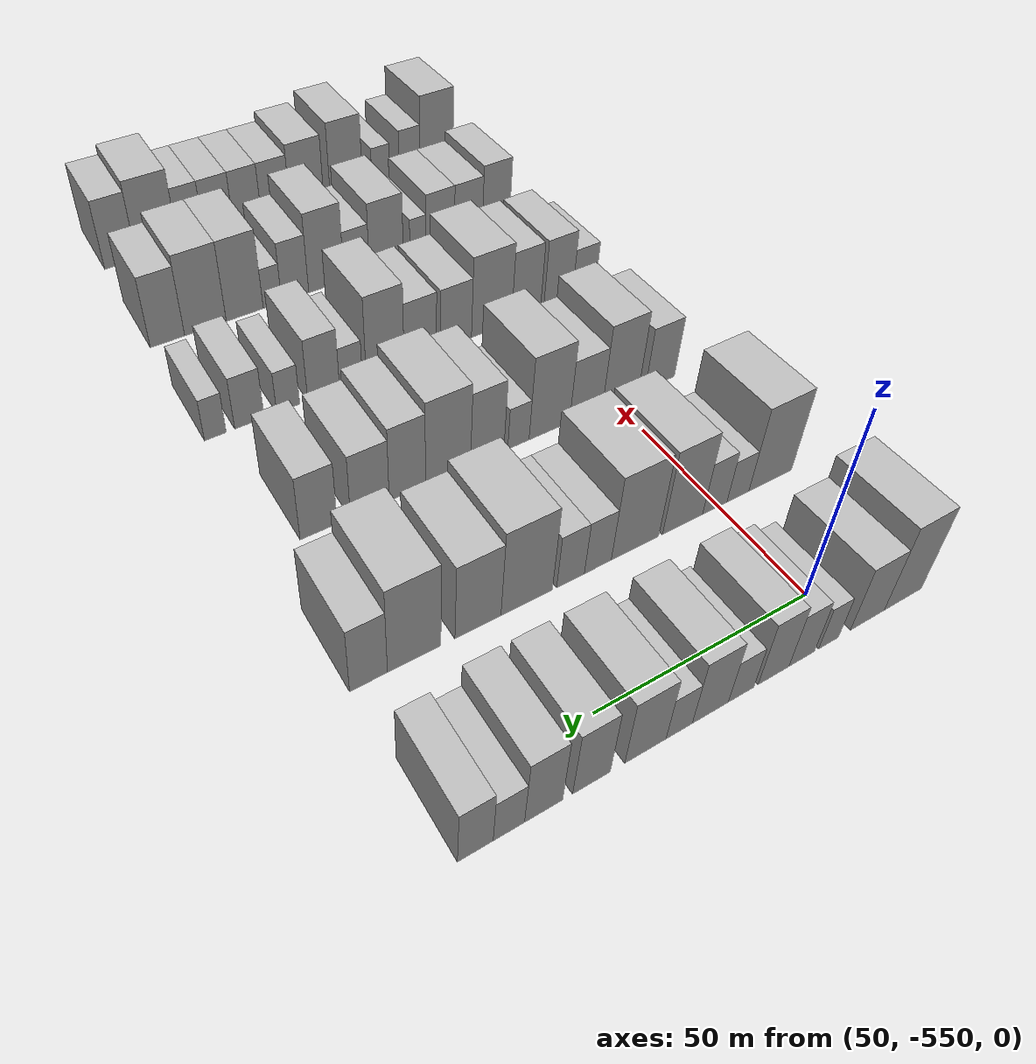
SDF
<sdf version="1.6">
 <world name="default">
  <model name="building_1">
   <static>1</static>
   <pose>50.0000 -565.0353 0 0.000000 0.000000 0.000000</pose>
   <link name="link">
    <pose>0 0 12.00 0 0 0</pose>
    <collision name="collision"><geometry><box><size>20.0000 9.9295 24.0000</size></box></geometry></collision>
    <visual name="visual">
     <cast_shadows>0</cast_shadows>
     <geometry><box><size>20.0000 9.9295 24.0000</size></box></geometry>
     <material>
      <script>
       <uri>model://HANNAS_wall/materials/scripts</uri>
       <uri>model://HANNAS_wall/materials/textures</uri>
       <name>vrc/HANNAS_wall</name>
      </script>
     </material>
    </visual>
   </link>
  </model>
  <model name="building_2">
   <static>1</static>
   <pose>50.0000 -555.6900 0 0.000000 0.000000 0.000000</pose>
   <link name="link">
    <pose>0 0 9.00 0 0 0</pose>
    <collision name="collision"><geometry><box><size>20.0000 8.7611 18.0000</size></box></geometry></collision>
    <visual name="visual">
     <cast_shadows>0</cast_shadows>
     <geometry><box><size>20.0000 8.7611 18.0000</size></box></geometry>
     <material>
      <script>
       <uri>model://HANNAS_wall/materials/scripts</uri>
       <uri>model://HANNAS_wall/materials/textures</uri>
       <name>vrc/HANNAS_wall</name>
      </script>
     </material>
    </visual>
   </link>
  </model>
  <model name="building_3">
   <static>1</static>
   <pose>50.0000 -545.8065 0 0.000000 0.000000 0.000000</pose>
   <link name="link">
    <pose>0 0 6.00 0 0 0</pose>
    <collision name="collision"><geometry><box><size>20.0000 5.0057 12.0000</size></box></geometry></collision>
    <visual name="visual">
     <cast_shadows>0</cast_shadows>
     <geometry><box><size>20.0000 5.0057 12.0000</size></box></geometry>
     <material>
      <script>
       <uri>model://HANNAS_wall/materials/scripts</uri>
       <uri>model://HANNAS_wall/materials/textures</uri>
       <name>vrc/HANNAS_wall</name>
      </script>
     </material>
    </visual>
   </link>
  </model>
  <model name="building_4">
   <static>1</static>
   <pose>50.0000 -539.1809 0 0.000000 0.000000 0.000000</pose>
   <link name="link">
    <pose>0 0 7.50 0 0 0</pose>
    <collision name="collision"><geometry><box><size>20.0000 6.2455 15.0000</size></box></geometry></collision>
    <visual name="visual">
     <cast_shadows>0</cast_shadows>
     <geometry><box><size>20.0000 6.2455 15.0000</size></box></geometry>
     <material>
      <script>
       <uri>model://HANNAS_wall/materials/scripts</uri>
       <uri>model://HANNAS_wall/materials/textures</uri>
       <name>vrc/HANNAS_wall</name>
      </script>
     </material>
    </visual>
   </link>
  </model>
  <model name="building_5">
   <static>1</static>
   <pose>50.0000 -532.3850 0 0.000000 0.000000 0.000000</pose>
   <link name="link">
    <pose>0 0 9.00 0 0 0</pose>
    <collision name="collision"><geometry><box><size>20.0000 7.3461 18.0000</size></box></geometry></collision>
    <visual name="visual">
     <cast_shadows>0</cast_shadows>
     <geometry><box><size>20.0000 7.3461 18.0000</size></box></geometry>
     <material>
      <script>
       <uri>model://HANNAS_wall/materials/scripts</uri>
       <uri>model://HANNAS_wall/materials/textures</uri>
       <name>vrc/HANNAS_wall</name>
      </script>
     </material>
    </visual>
   </link>
  </model>
  <model name="building_6">
   <static>1</static>
   <pose>50.0000 -524.7717 0 0.000000 0.000000 0.000000</pose>
   <link name="link">
    <pose>0 0 6.00 0 0 0</pose>
    <collision name="collision"><geometry><box><size>20.0000 5.8805 12.0000</size></box></geometry></collision>
    <visual name="visual">
     <cast_shadows>0</cast_shadows>
     <geometry><box><size>20.0000 5.8805 12.0000</size></box></geometry>
     <material>
      <script>
       <uri>model://HANNAS_wall/materials/scripts</uri>
       <uri>model://HANNAS_wall/materials/textures</uri>
       <name>vrc/HANNAS_wall</name>
      </script>
     </material>
    </visual>
   </link>
  </model>
  <model name="building_7">
   <static>1</static>
   <pose>50.0000 -517.7646 0 0.000000 0.000000 0.000000</pose>
   <link name="link">
    <pose>0 0 9.00 0 0 0</pose>
    <collision name="collision"><geometry><box><size>20.0000 8.1337 18.0000</size></box></geometry></collision>
    <visual name="visual">
     <cast_shadows>0</cast_shadows>
     <geometry><box><size>20.0000 8.1337 18.0000</size></box></geometry>
     <material>
      <script>
       <uri>model://HANNAS_wall/materials/scripts</uri>
       <uri>model://HANNAS_wall/materials/textures</uri>
       <name>vrc/HANNAS_wall</name>
      </script>
     </material>
    </visual>
   </link>
  </model>
  <model name="building_8">
   <static>1</static>
   <pose>50.0000 -510.8210 0 0.000000 0.000000 0.000000</pose>
   <link name="link">
    <pose>0 0 6.00 0 0 0</pose>
    <collision name="collision"><geometry><box><size>20.0000 5.7534 12.0000</size></box></geometry></collision>
    <visual name="visual">
     <cast_shadows>0</cast_shadows>
     <geometry><box><size>20.0000 5.7534 12.0000</size></box></geometry>
     <material>
      <script>
       <uri>model://HANNAS_wall/materials/scripts</uri>
       <uri>model://HANNAS_wall/materials/textures</uri>
       <name>vrc/HANNAS_wall</name>
      </script>
     </material>
    </visual>
   </link>
  </model>
  <model name="building_9">
   <static>1</static>
   <pose>50.0000 -503.5562 0 0.000000 0.000000 0.000000</pose>
   <link name="link">
    <pose>0 0 9.00 0 0 0</pose>
    <collision name="collision"><geometry><box><size>20.0000 8.7762 18.0000</size></box></geometry></collision>
    <visual name="visual">
     <cast_shadows>0</cast_shadows>
     <geometry><box><size>20.0000 8.7762 18.0000</size></box></geometry>
     <material>
      <script>
       <uri>model://HANNAS_wall/materials/scripts</uri>
       <uri>model://HANNAS_wall/materials/textures</uri>
       <name>vrc/HANNAS_wall</name>
      </script>
     </material>
    </visual>
   </link>
  </model>
  <model name="building_10">
   <static>1</static>
   <pose>50.0000 -492.3334 0 0.000000 0.000000 0.000000</pose>
   <link name="link">
    <pose>0 0 9.00 0 0 0</pose>
    <collision name="collision"><geometry><box><size>20.0000 7.6694 18.0000</size></box></geometry></collision>
    <visual name="visual">
     <cast_shadows>0</cast_shadows>
     <geometry><box><size>20.0000 7.6694 18.0000</size></box></geometry>
     <material>
      <script>
       <uri>model://HANNAS_wall/materials/scripts</uri>
       <uri>model://HANNAS_wall/materials/textures</uri>
       <name>vrc/HANNAS_wall</name>
      </script>
     </material>
    </visual>
   </link>
  </model>
  <model name="building_11">
   <static>1</static>
   <pose>50.0000 -482.7700 0 0.000000 0.000000 0.000000</pose>
   <link name="link">
    <pose>0 0 9.00 0 0 0</pose>
    <collision name="collision"><geometry><box><size>20.0000 7.4574 18.0000</size></box></geometry></collision>
    <visual name="visual">
     <cast_shadows>0</cast_shadows>
     <geometry><box><size>20.0000 7.4574 18.0000</size></box></geometry>
     <material>
      <script>
       <uri>model://HANNAS_wall/materials/scripts</uri>
       <uri>model://HANNAS_wall/materials/textures</uri>
       <name>vrc/HANNAS_wall</name>
      </script>
     </material>
    </visual>
   </link>
  </model>
  <model name="building_12">
   <static>1</static>
   <pose>50.0000 -476.0583 0 0.000000 0.000000 0.000000</pose>
   <link name="link">
    <pose>0 0 6.00 0 0 0</pose>
    <collision name="collision"><geometry><box><size>20.0000 5.9659 12.0000</size></box></geometry></collision>
    <visual name="visual">
     <cast_shadows>0</cast_shadows>
     <geometry><box><size>20.0000 5.9659 12.0000</size></box></geometry>
     <material>
      <script>
       <uri>model://HANNAS_wall/materials/scripts</uri>
       <uri>model://HANNAS_wall/materials/textures</uri>
       <name>vrc/HANNAS_wall</name>
      </script>
     </material>
    </visual>
   </link>
  </model>
  <model name="building_13">
   <static>1</static>
   <pose>50.0000 -469.7635 0 0.000000 0.000000 0.000000</pose>
   <link name="link">
    <pose>0 0 7.50 0 0 0</pose>
    <collision name="collision"><geometry><box><size>20.0000 6.6238 15.0000</size></box></geometry></collision>
    <visual name="visual">
     <cast_shadows>0</cast_shadows>
     <geometry><box><size>20.0000 6.6238 15.0000</size></box></geometry>
     <material>
      <script>
       <uri>model://HANNAS_wall/materials/scripts</uri>
       <uri>model://HANNAS_wall/materials/textures</uri>
       <name>vrc/HANNAS_wall</name>
      </script>
     </material>
    </visual>
   </link>
  </model>
  <model name="building_116">
   <static>1</static>
   <pose>85.0000 -564.0506 0 0.000000 0.000000 0.000000</pose>
   <link name="link">
    <pose>0 0 12.00 0 0 0</pose>
    <collision name="collision"><geometry><box><size>20.0000 11.8989 24.0000</size></box></geometry></collision>
    <visual name="visual">
     <cast_shadows>0</cast_shadows>
     <geometry><box><size>20.0000 11.8989 24.0000</size></box></geometry>
     <material>
      <script>
       <uri>model://HANNAS_wall/materials/scripts</uri>
       <uri>model://HANNAS_wall/materials/textures</uri>
       <name>vrc/HANNAS_wall</name>
      </script>
     </material>
    </visual>
   </link>
  </model>
  <model name="building_117">
   <static>1</static>
   <pose>85.0000 -555.1278 0 0.000000 0.000000 0.000000</pose>
   <link name="link">
    <pose>0 0 6.00 0 0 0</pose>
    <collision name="collision"><geometry><box><size>20.0000 5.9466 12.0000</size></box></geometry></collision>
    <visual name="visual">
     <cast_shadows>0</cast_shadows>
     <geometry><box><size>20.0000 5.9466 12.0000</size></box></geometry>
     <material>
      <script>
       <uri>model://HANNAS_wall/materials/scripts</uri>
       <uri>model://HANNAS_wall/materials/textures</uri>
       <name>vrc/HANNAS_wall</name>
      </script>
     </material>
    </visual>
   </link>
  </model>
  <model name="building_118">
   <static>1</static>
   <pose>85.0000 -548.9232 0 0.000000 0.000000 0.000000</pose>
   <link name="link">
    <pose>0 0 7.50 0 0 0</pose>
    <collision name="collision"><geometry><box><size>20.0000 6.4627 15.0000</size></box></geometry></collision>
    <visual name="visual">
     <cast_shadows>0</cast_shadows>
     <geometry><box><size>20.0000 6.4627 15.0000</size></box></geometry>
     <material>
      <script>
       <uri>model://HANNAS_wall/materials/scripts</uri>
       <uri>model://HANNAS_wall/materials/textures</uri>
       <name>vrc/HANNAS_wall</name>
      </script>
     </material>
    </visual>
   </link>
  </model>
  <model name="building_119">
   <static>1</static>
   <pose>85.0000 -540.5253 0 0.000000 0.000000 0.000000</pose>
   <link name="link">
    <pose>0 0 12.00 0 0 0</pose>
    <collision name="collision"><geometry><box><size>20.0000 10.3332 24.0000</size></box></geometry></collision>
    <visual name="visual">
     <cast_shadows>0</cast_shadows>
     <geometry><box><size>20.0000 10.3332 24.0000</size></box></geometry>
     <material>
      <script>
       <uri>model://HANNAS_wall/materials/scripts</uri>
       <uri>model://HANNAS_wall/materials/textures</uri>
       <name>vrc/HANNAS_wall</name>
      </script>
     </material>
    </visual>
   </link>
  </model>
  <model name="building_120">
   <static>1</static>
   <pose>85.0000 -528.4848 0 0.000000 0.000000 0.000000</pose>
   <link name="link">
    <pose>0 0 12.00 0 0 0</pose>
    <collision name="collision"><geometry><box><size>20.0000 11.7479 24.0000</size></box></geometry></collision>
    <visual name="visual">
     <cast_shadows>0</cast_shadows>
     <geometry><box><size>20.0000 11.7479 24.0000</size></box></geometry>
     <material>
      <script>
       <uri>model://HANNAS_wall/materials/scripts</uri>
       <uri>model://HANNAS_wall/materials/textures</uri>
       <name>vrc/HANNAS_wall</name>
      </script>
     </material>
    </visual>
   </link>
  </model>
  <model name="building_121">
   <static>1</static>
   <pose>85.0000 -519.3772 0 0.000000 0.000000 0.000000</pose>
   <link name="link">
    <pose>0 0 7.50 0 0 0</pose>
    <collision name="collision"><geometry><box><size>20.0000 6.4673 15.0000</size></box></geometry></collision>
    <visual name="visual">
     <cast_shadows>0</cast_shadows>
     <geometry><box><size>20.0000 6.4673 15.0000</size></box></geometry>
     <material>
      <script>
       <uri>model://HANNAS_wall/materials/scripts</uri>
       <uri>model://HANNAS_wall/materials/textures</uri>
       <name>vrc/HANNAS_wall</name>
      </script>
     </material>
    </visual>
   </link>
  </model>
  <model name="building_122">
   <static>1</static>
   <pose>85.0000 -512.8950 0 0.000000 0.000000 0.000000</pose>
   <link name="link">
    <pose>0 0 7.50 0 0 0</pose>
    <collision name="collision"><geometry><box><size>20.0000 6.4971 15.0000</size></box></geometry></collision>
    <visual name="visual">
     <cast_shadows>0</cast_shadows>
     <geometry><box><size>20.0000 6.4971 15.0000</size></box></geometry>
     <material>
      <script>
       <uri>model://HANNAS_wall/materials/scripts</uri>
       <uri>model://HANNAS_wall/materials/textures</uri>
       <name>vrc/HANNAS_wall</name>
      </script>
     </material>
    </visual>
   </link>
  </model>
  <model name="building_123">
   <static>1</static>
   <pose>85.0000 -502.8181 0 0.000000 0.000000 0.000000</pose>
   <link name="link">
    <pose>0 0 12.00 0 0 0</pose>
    <collision name="collision"><geometry><box><size>20.0000 11.6566 24.0000</size></box></geometry></collision>
    <visual name="visual">
     <cast_shadows>0</cast_shadows>
     <geometry><box><size>20.0000 11.6566 24.0000</size></box></geometry>
     <material>
      <script>
       <uri>model://HANNAS_wall/materials/scripts</uri>
       <uri>model://HANNAS_wall/materials/textures</uri>
       <name>vrc/HANNAS_wall</name>
      </script>
     </material>
    </visual>
   </link>
  </model>
  <model name="building_124">
   <static>1</static>
   <pose>85.0000 -491.9688 0 0.000000 0.000000 0.000000</pose>
   <link name="link">
    <pose>0 0 10.50 0 0 0</pose>
    <collision name="collision"><geometry><box><size>20.0000 10.0420 21.0000</size></box></geometry></collision>
    <visual name="visual">
     <cast_shadows>0</cast_shadows>
     <geometry><box><size>20.0000 10.0420 21.0000</size></box></geometry>
     <material>
      <script>
       <uri>model://HANNAS_wall/materials/scripts</uri>
       <uri>model://HANNAS_wall/materials/textures</uri>
       <name>vrc/HANNAS_wall</name>
      </script>
     </material>
    </visual>
   </link>
  </model>
  <model name="building_125">
   <static>1</static>
   <pose>85.0000 -478.4094 0 0.000000 0.000000 0.000000</pose>
   <link name="link">
    <pose>0 0 12.00 0 0 0</pose>
    <collision name="collision"><geometry><box><size>20.0000 11.0767 24.0000</size></box></geometry></collision>
    <visual name="visual">
     <cast_shadows>0</cast_shadows>
     <geometry><box><size>20.0000 11.0767 24.0000</size></box></geometry>
     <material>
      <script>
       <uri>model://HANNAS_wall/materials/scripts</uri>
       <uri>model://HANNAS_wall/materials/textures</uri>
       <name>vrc/HANNAS_wall</name>
      </script>
     </material>
    </visual>
   </link>
  </model>
  <model name="building_126">
   <static>1</static>
   <pose>85.0000 -469.0663 0 0.000000 0.000000 0.000000</pose>
   <link name="link">
    <pose>0 0 9.00 0 0 0</pose>
    <collision name="collision"><geometry><box><size>20.0000 7.6094 18.0000</size></box></geometry></collision>
    <visual name="visual">
     <cast_shadows>0</cast_shadows>
     <geometry><box><size>20.0000 7.6094 18.0000</size></box></geometry>
     <material>
      <script>
       <uri>model://HANNAS_wall/materials/scripts</uri>
       <uri>model://HANNAS_wall/materials/textures</uri>
       <name>vrc/HANNAS_wall</name>
      </script>
     </material>
    </visual>
   </link>
  </model>
  <model name="building_249">
   <static>1</static>
   <pose>120.0000 -562.7514 0 0.000000 0.000000 0.000000</pose>
   <link name="link">
    <pose>0 0 9.00 0 0 0</pose>
    <collision name="collision"><geometry><box><size>20.0000 8.4972 18.0000</size></box></geometry></collision>
    <visual name="visual">
     <cast_shadows>0</cast_shadows>
     <geometry><box><size>20.0000 8.4972 18.0000</size></box></geometry>
     <material>
      <script>
       <uri>model://HANNAS_wall/materials/scripts</uri>
       <uri>model://HANNAS_wall/materials/textures</uri>
       <name>vrc/HANNAS_wall</name>
      </script>
     </material>
    </visual>
   </link>
  </model>
  <model name="building_250">
   <static>1</static>
   <pose>120.0000 -551.4380 0 0.000000 0.000000 0.000000</pose>
   <link name="link">
    <pose>0 0 12.00 0 0 0</pose>
    <collision name="collision"><geometry><box><size>20.0000 10.1295 24.0000</size></box></geometry></collision>
    <visual name="visual">
     <cast_shadows>0</cast_shadows>
     <geometry><box><size>20.0000 10.1295 24.0000</size></box></geometry>
     <material>
      <script>
       <uri>model://HANNAS_wall/materials/scripts</uri>
       <uri>model://HANNAS_wall/materials/textures</uri>
       <name>vrc/HANNAS_wall</name>
      </script>
     </material>
    </visual>
   </link>
  </model>
  <model name="building_251">
   <static>1</static>
   <pose>120.0000 -541.8839 0 0.000000 0.000000 0.000000</pose>
   <link name="link">
    <pose>0 0 9.00 0 0 0</pose>
    <collision name="collision"><geometry><box><size>20.0000 8.9787 18.0000</size></box></geometry></collision>
    <visual name="visual">
     <cast_shadows>0</cast_shadows>
     <geometry><box><size>20.0000 8.9787 18.0000</size></box></geometry>
     <material>
      <script>
       <uri>model://HANNAS_wall/materials/scripts</uri>
       <uri>model://HANNAS_wall/materials/textures</uri>
       <name>vrc/HANNAS_wall</name>
      </script>
     </material>
    </visual>
   </link>
  </model>
  <model name="building_252">
   <static>1</static>
   <pose>120.0000 -532.0388 0 0.000000 0.000000 0.000000</pose>
   <link name="link">
    <pose>0 0 12.00 0 0 0</pose>
    <collision name="collision"><geometry><box><size>20.0000 10.7116 24.0000</size></box></geometry></collision>
    <visual name="visual">
     <cast_shadows>0</cast_shadows>
     <geometry><box><size>20.0000 10.7116 24.0000</size></box></geometry>
     <material>
      <script>
       <uri>model://HANNAS_wall/materials/scripts</uri>
       <uri>model://HANNAS_wall/materials/textures</uri>
       <name>vrc/HANNAS_wall</name>
      </script>
     </material>
    </visual>
   </link>
  </model>
  <model name="building_253">
   <static>1</static>
   <pose>120.0000 -523.9271 0 0.000000 0.000000 0.000000</pose>
   <link name="link">
    <pose>0 0 6.00 0 0 0</pose>
    <collision name="collision"><geometry><box><size>20.0000 5.5116 12.0000</size></box></geometry></collision>
    <visual name="visual">
     <cast_shadows>0</cast_shadows>
     <geometry><box><size>20.0000 5.5116 12.0000</size></box></geometry>
     <material>
      <script>
       <uri>model://HANNAS_wall/materials/scripts</uri>
       <uri>model://HANNAS_wall/materials/textures</uri>
       <name>vrc/HANNAS_wall</name>
      </script>
     </material>
    </visual>
   </link>
  </model>
  <model name="building_254">
   <static>1</static>
   <pose>120.0000 -515.9507 0 0.000000 0.000000 0.000000</pose>
   <link name="link">
    <pose>0 0 10.50 0 0 0</pose>
    <collision name="collision"><geometry><box><size>20.0000 8.4413 21.0000</size></box></geometry></collision>
    <visual name="visual">
     <cast_shadows>0</cast_shadows>
     <geometry><box><size>20.0000 8.4413 21.0000</size></box></geometry>
     <material>
      <script>
       <uri>model://HANNAS_wall/materials/scripts</uri>
       <uri>model://HANNAS_wall/materials/textures</uri>
       <name>vrc/HANNAS_wall</name>
      </script>
     </material>
    </visual>
   </link>
  </model>
  <model name="building_255">
   <static>1</static>
   <pose>120.0000 -506.2251 0 0.000000 0.000000 0.000000</pose>
   <link name="link">
    <pose>0 0 12.00 0 0 0</pose>
    <collision name="collision"><geometry><box><size>20.0000 11.0099 24.0000</size></box></geometry></collision>
    <visual name="visual">
     <cast_shadows>0</cast_shadows>
     <geometry><box><size>20.0000 11.0099 24.0000</size></box></geometry>
     <material>
      <script>
       <uri>model://HANNAS_wall/materials/scripts</uri>
       <uri>model://HANNAS_wall/materials/textures</uri>
       <name>vrc/HANNAS_wall</name>
      </script>
     </material>
    </visual>
   </link>
  </model>
  <model name="building_256">
   <static>1</static>
   <pose>120.0000 -496.4278 0 0.000000 0.000000 0.000000</pose>
   <link name="link">
    <pose>0 0 10.50 0 0 0</pose>
    <collision name="collision"><geometry><box><size>20.0000 8.5849 21.0000</size></box></geometry></collision>
    <visual name="visual">
     <cast_shadows>0</cast_shadows>
     <geometry><box><size>20.0000 8.5849 21.0000</size></box></geometry>
     <material>
      <script>
       <uri>model://HANNAS_wall/materials/scripts</uri>
       <uri>model://HANNAS_wall/materials/textures</uri>
       <name>vrc/HANNAS_wall</name>
      </script>
     </material>
    </visual>
   </link>
  </model>
  <model name="building_257">
   <static>1</static>
   <pose>120.0000 -487.6752 0 0.000000 0.000000 0.000000</pose>
   <link name="link">
    <pose>0 0 9.00 0 0 0</pose>
    <collision name="collision"><geometry><box><size>20.0000 8.9202 18.0000</size></box></geometry></collision>
    <visual name="visual">
     <cast_shadows>0</cast_shadows>
     <geometry><box><size>20.0000 8.9202 18.0000</size></box></geometry>
     <material>
      <script>
       <uri>model://HANNAS_wall/materials/scripts</uri>
       <uri>model://HANNAS_wall/materials/textures</uri>
       <name>vrc/HANNAS_wall</name>
      </script>
     </material>
    </visual>
   </link>
  </model>
  <model name="building_258">
   <static>1</static>
   <pose>120.0000 -476.0980 0 0.000000 0.000000 0.000000</pose>
   <link name="link">
    <pose>0 0 9.00 0 0 0</pose>
    <collision name="collision"><geometry><box><size>20.0000 8.2342 18.0000</size></box></geometry></collision>
    <visual name="visual">
     <cast_shadows>0</cast_shadows>
     <geometry><box><size>20.0000 8.2342 18.0000</size></box></geometry>
     <material>
      <script>
       <uri>model://HANNAS_wall/materials/scripts</uri>
       <uri>model://HANNAS_wall/materials/textures</uri>
       <name>vrc/HANNAS_wall</name>
      </script>
     </material>
    </visual>
   </link>
  </model>
  <model name="building_382">
   <static>1</static>
   <pose>155.0000 -566.4762 0 0.000000 0.000000 0.000000</pose>
   <link name="link">
    <pose>0 0 7.50 0 0 0</pose>
    <collision name="collision"><geometry><box><size>20.0000 7.0477 15.0000</size></box></geometry></collision>
    <visual name="visual">
     <cast_shadows>0</cast_shadows>
     <geometry><box><size>20.0000 7.0477 15.0000</size></box></geometry>
     <material>
      <script>
       <uri>model://HANNAS_wall/materials/scripts</uri>
       <uri>model://HANNAS_wall/materials/textures</uri>
       <name>vrc/HANNAS_wall</name>
      </script>
     </material>
    </visual>
   </link>
  </model>
  <model name="building_383">
   <static>1</static>
   <pose>155.0000 -558.6717 0 0.000000 0.000000 0.000000</pose>
   <link name="link">
    <pose>0 0 10.50 0 0 0</pose>
    <collision name="collision"><geometry><box><size>20.0000 8.5612 21.0000</size></box></geometry></collision>
    <visual name="visual">
     <cast_shadows>0</cast_shadows>
     <geometry><box><size>20.0000 8.5612 21.0000</size></box></geometry>
     <material>
      <script>
       <uri>model://HANNAS_wall/materials/scripts</uri>
       <uri>model://HANNAS_wall/materials/textures</uri>
       <name>vrc/HANNAS_wall</name>
      </script>
     </material>
    </visual>
   </link>
  </model>
  <model name="building_384">
   <static>1</static>
   <pose>155.0000 -549.1633 0 0.000000 0.000000 0.000000</pose>
   <link name="link">
    <pose>0 0 10.50 0 0 0</pose>
    <collision name="collision"><geometry><box><size>20.0000 8.4557 21.0000</size></box></geometry></collision>
    <visual name="visual">
     <cast_shadows>0</cast_shadows>
     <geometry><box><size>20.0000 8.4557 21.0000</size></box></geometry>
     <material>
      <script>
       <uri>model://HANNAS_wall/materials/scripts</uri>
       <uri>model://HANNAS_wall/materials/textures</uri>
       <name>vrc/HANNAS_wall</name>
      </script>
     </material>
    </visual>
   </link>
  </model>
  <model name="building_385">
   <static>1</static>
   <pose>155.0000 -539.2023 0 0.000000 0.000000 0.000000</pose>
   <link name="link">
    <pose>0 0 12.00 0 0 0</pose>
    <collision name="collision"><geometry><box><size>20.0000 11.4663 24.0000</size></box></geometry></collision>
    <visual name="visual">
     <cast_shadows>0</cast_shadows>
     <geometry><box><size>20.0000 11.4663 24.0000</size></box></geometry>
     <material>
      <script>
       <uri>model://HANNAS_wall/materials/scripts</uri>
       <uri>model://HANNAS_wall/materials/textures</uri>
       <name>vrc/HANNAS_wall</name>
      </script>
     </material>
    </visual>
   </link>
  </model>
  <model name="building_386">
   <static>1</static>
   <pose>155.0000 -529.1004 0 0.000000 0.000000 0.000000</pose>
   <link name="link">
    <pose>0 0 9.00 0 0 0</pose>
    <collision name="collision"><geometry><box><size>20.0000 8.7374 18.0000</size></box></geometry></collision>
    <visual name="visual">
     <cast_shadows>0</cast_shadows>
     <geometry><box><size>20.0000 8.7374 18.0000</size></box></geometry>
     <material>
      <script>
       <uri>model://HANNAS_wall/materials/scripts</uri>
       <uri>model://HANNAS_wall/materials/textures</uri>
       <name>vrc/HANNAS_wall</name>
      </script>
     </material>
    </visual>
   </link>
  </model>
  <model name="building_387">
   <static>1</static>
   <pose>155.0000 -519.3577 0 0.000000 0.000000 0.000000</pose>
   <link name="link">
    <pose>0 0 9.00 0 0 0</pose>
    <collision name="collision"><geometry><box><size>20.0000 8.7480 18.0000</size></box></geometry></collision>
    <visual name="visual">
     <cast_shadows>0</cast_shadows>
     <geometry><box><size>20.0000 8.7480 18.0000</size></box></geometry>
     <material>
      <script>
       <uri>model://HANNAS_wall/materials/scripts</uri>
       <uri>model://HANNAS_wall/materials/textures</uri>
       <name>vrc/HANNAS_wall</name>
      </script>
     </material>
    </visual>
   </link>
  </model>
  <model name="building_388">
   <static>1</static>
   <pose>155.0000 -510.0064 0 0.000000 0.000000 0.000000</pose>
   <link name="link">
    <pose>0 0 12.00 0 0 0</pose>
    <collision name="collision"><geometry><box><size>20.0000 9.9545 24.0000</size></box></geometry></collision>
    <visual name="visual">
     <cast_shadows>0</cast_shadows>
     <geometry><box><size>20.0000 9.9545 24.0000</size></box></geometry>
     <material>
      <script>
       <uri>model://HANNAS_wall/materials/scripts</uri>
       <uri>model://HANNAS_wall/materials/textures</uri>
       <name>vrc/HANNAS_wall</name>
      </script>
     </material>
    </visual>
   </link>
  </model>
  <model name="building_389">
   <static>1</static>
   <pose>155.0000 -501.1074 0 0.000000 0.000000 0.000000</pose>
   <link name="link">
    <pose>0 0 6.00 0 0 0</pose>
    <collision name="collision"><geometry><box><size>20.0000 5.8436 12.0000</size></box></geometry></collision>
    <visual name="visual">
     <cast_shadows>0</cast_shadows>
     <geometry><box><size>20.0000 5.8436 12.0000</size></box></geometry>
     <material>
      <script>
       <uri>model://HANNAS_wall/materials/scripts</uri>
       <uri>model://HANNAS_wall/materials/textures</uri>
       <name>vrc/HANNAS_wall</name>
      </script>
     </material>
    </visual>
   </link>
  </model>
  <model name="building_390">
   <static>1</static>
   <pose>155.0000 -494.1797 0 0.000000 0.000000 0.000000</pose>
   <link name="link">
    <pose>0 0 9.00 0 0 0</pose>
    <collision name="collision"><geometry><box><size>20.0000 8.0118 18.0000</size></box></geometry></collision>
    <visual name="visual">
     <cast_shadows>0</cast_shadows>
     <geometry><box><size>20.0000 8.0118 18.0000</size></box></geometry>
     <material>
      <script>
       <uri>model://HANNAS_wall/materials/scripts</uri>
       <uri>model://HANNAS_wall/materials/textures</uri>
       <name>vrc/HANNAS_wall</name>
      </script>
     </material>
    </visual>
   </link>
  </model>
  <model name="building_391">
   <static>1</static>
   <pose>155.0000 -485.3527 0 0.000000 0.000000 0.000000</pose>
   <link name="link">
    <pose>0 0 6.00 0 0 0</pose>
    <collision name="collision"><geometry><box><size>20.0000 5.6421 12.0000</size></box></geometry></collision>
    <visual name="visual">
     <cast_shadows>0</cast_shadows>
     <geometry><box><size>20.0000 5.6421 12.0000</size></box></geometry>
     <material>
      <script>
       <uri>model://HANNAS_wall/materials/scripts</uri>
       <uri>model://HANNAS_wall/materials/textures</uri>
       <name>vrc/HANNAS_wall</name>
      </script>
     </material>
    </visual>
   </link>
  </model>
  <model name="building_392">
   <static>1</static>
   <pose>155.0000 -476.0138 0 0.000000 0.000000 0.000000</pose>
   <link name="link">
    <pose>0 0 7.50 0 0 0</pose>
    <collision name="collision"><geometry><box><size>20.0000 7.0358 15.0000</size></box></geometry></collision>
    <visual name="visual">
     <cast_shadows>0</cast_shadows>
     <geometry><box><size>20.0000 7.0358 15.0000</size></box></geometry>
     <material>
      <script>
       <uri>model://HANNAS_wall/materials/scripts</uri>
       <uri>model://HANNAS_wall/materials/textures</uri>
       <name>vrc/HANNAS_wall</name>
      </script>
     </material>
    </visual>
   </link>
  </model>
  <model name="building_393">
   <static>1</static>
   <pose>155.0000 -467.9610 0 0.000000 0.000000 0.000000</pose>
   <link name="link">
    <pose>0 0 6.00 0 0 0</pose>
    <collision name="collision"><geometry><box><size>20.0000 5.0697 12.0000</size></box></geometry></collision>
    <visual name="visual">
     <cast_shadows>0</cast_shadows>
     <geometry><box><size>20.0000 5.0697 12.0000</size></box></geometry>
     <material>
      <script>
       <uri>model://HANNAS_wall/materials/scripts</uri>
       <uri>model://HANNAS_wall/materials/textures</uri>
       <name>vrc/HANNAS_wall</name>
      </script>
     </material>
    </visual>
   </link>
  </model>
  <model name="building_509">
   <static>1</static>
   <pose>190.0000 -562.6490 0 0.000000 0.000000 0.000000</pose>
   <link name="link">
    <pose>0 0 10.50 0 0 0</pose>
    <collision name="collision"><geometry><box><size>20.0000 8.7021 21.0000</size></box></geometry></collision>
    <visual name="visual">
     <cast_shadows>0</cast_shadows>
     <geometry><box><size>20.0000 8.7021 21.0000</size></box></geometry>
     <material>
      <script>
       <uri>model://HANNAS_wall/materials/scripts</uri>
       <uri>model://HANNAS_wall/materials/textures</uri>
       <name>vrc/HANNAS_wall</name>
      </script>
     </material>
    </visual>
   </link>
  </model>
  <model name="building_510">
   <static>1</static>
   <pose>190.0000 -553.9293 0 0.000000 0.000000 0.000000</pose>
   <link name="link">
    <pose>0 0 9.00 0 0 0</pose>
    <collision name="collision"><geometry><box><size>20.0000 8.7372 18.0000</size></box></geometry></collision>
    <visual name="visual">
     <cast_shadows>0</cast_shadows>
     <geometry><box><size>20.0000 8.7372 18.0000</size></box></geometry>
     <material>
      <script>
       <uri>model://HANNAS_wall/materials/scripts</uri>
       <uri>model://HANNAS_wall/materials/textures</uri>
       <name>vrc/HANNAS_wall</name>
      </script>
     </material>
    </visual>
   </link>
  </model>
  <model name="building_511">
   <static>1</static>
   <pose>190.0000 -545.2531 0 0.000000 0.000000 0.000000</pose>
   <link name="link">
    <pose>0 0 9.00 0 0 0</pose>
    <collision name="collision"><geometry><box><size>20.0000 8.6153 18.0000</size></box></geometry></collision>
    <visual name="visual">
     <cast_shadows>0</cast_shadows>
     <geometry><box><size>20.0000 8.6153 18.0000</size></box></geometry>
     <material>
      <script>
       <uri>model://HANNAS_wall/materials/scripts</uri>
       <uri>model://HANNAS_wall/materials/textures</uri>
       <name>vrc/HANNAS_wall</name>
      </script>
     </material>
    </visual>
   </link>
  </model>
  <model name="building_512">
   <static>1</static>
   <pose>190.0000 -538.5189 0 0.000000 0.000000 0.000000</pose>
   <link name="link">
    <pose>0 0 6.00 0 0 0</pose>
    <collision name="collision"><geometry><box><size>20.0000 4.8532 12.0000</size></box></geometry></collision>
    <visual name="visual">
     <cast_shadows>0</cast_shadows>
     <geometry><box><size>20.0000 4.8532 12.0000</size></box></geometry>
     <material>
      <script>
       <uri>model://HANNAS_wall/materials/scripts</uri>
       <uri>model://HANNAS_wall/materials/textures</uri>
       <name>vrc/HANNAS_wall</name>
      </script>
     </material>
    </visual>
   </link>
  </model>
  <model name="building_513">
   <static>1</static>
   <pose>190.0000 -529.1197 0 0.000000 0.000000 0.000000</pose>
   <link name="link">
    <pose>0 0 10.50 0 0 0</pose>
    <collision name="collision"><geometry><box><size>20.0000 9.9451 21.0000</size></box></geometry></collision>
    <visual name="visual">
     <cast_shadows>0</cast_shadows>
     <geometry><box><size>20.0000 9.9451 21.0000</size></box></geometry>
     <material>
      <script>
       <uri>model://HANNAS_wall/materials/scripts</uri>
       <uri>model://HANNAS_wall/materials/textures</uri>
       <name>vrc/HANNAS_wall</name>
      </script>
     </material>
    </visual>
   </link>
  </model>
  <model name="building_514">
   <static>1</static>
   <pose>190.0000 -520.4983 0 0.000000 0.000000 0.000000</pose>
   <link name="link">
    <pose>0 0 7.50 0 0 0</pose>
    <collision name="collision"><geometry><box><size>20.0000 7.2976 15.0000</size></box></geometry></collision>
    <visual name="visual">
     <cast_shadows>0</cast_shadows>
     <geometry><box><size>20.0000 7.2976 15.0000</size></box></geometry>
     <material>
      <script>
       <uri>model://HANNAS_wall/materials/scripts</uri>
       <uri>model://HANNAS_wall/materials/textures</uri>
       <name>vrc/HANNAS_wall</name>
      </script>
     </material>
    </visual>
   </link>
  </model>
  <model name="building_515">
   <static>1</static>
   <pose>190.0000 -511.9051 0 0.000000 0.000000 0.000000</pose>
   <link name="link">
    <pose>0 0 12.00 0 0 0</pose>
    <collision name="collision"><geometry><box><size>20.0000 9.8889 24.0000</size></box></geometry></collision>
    <visual name="visual">
     <cast_shadows>0</cast_shadows>
     <geometry><box><size>20.0000 9.8889 24.0000</size></box></geometry>
     <material>
      <script>
       <uri>model://HANNAS_wall/materials/scripts</uri>
       <uri>model://HANNAS_wall/materials/textures</uri>
       <name>vrc/HANNAS_wall</name>
      </script>
     </material>
    </visual>
   </link>
  </model>
  <model name="building_516">
   <static>1</static>
   <pose>190.0000 -503.2450 0 0.000000 0.000000 0.000000</pose>
   <link name="link">
    <pose>0 0 9.00 0 0 0</pose>
    <collision name="collision"><geometry><box><size>20.0000 7.4312 18.0000</size></box></geometry></collision>
    <visual name="visual">
     <cast_shadows>0</cast_shadows>
     <geometry><box><size>20.0000 7.4312 18.0000</size></box></geometry>
     <material>
      <script>
       <uri>model://HANNAS_wall/materials/scripts</uri>
       <uri>model://HANNAS_wall/materials/textures</uri>
       <name>vrc/HANNAS_wall</name>
      </script>
     </material>
    </visual>
   </link>
  </model>
  <model name="building_517">
   <static>1</static>
   <pose>190.0000 -497.0502 0 0.000000 0.000000 0.000000</pose>
   <link name="link">
    <pose>0 0 6.00 0 0 0</pose>
    <collision name="collision"><geometry><box><size>20.0000 4.9584 12.0000</size></box></geometry></collision>
    <visual name="visual">
     <cast_shadows>0</cast_shadows>
     <geometry><box><size>20.0000 4.9584 12.0000</size></box></geometry>
     <material>
      <script>
       <uri>model://HANNAS_wall/materials/scripts</uri>
       <uri>model://HANNAS_wall/materials/textures</uri>
       <name>vrc/HANNAS_wall</name>
      </script>
     </material>
    </visual>
   </link>
  </model>
  <model name="building_518">
   <static>1</static>
   <pose>190.0000 -489.6707 0 0.000000 0.000000 0.000000</pose>
   <link name="link">
    <pose>0 0 12.00 0 0 0</pose>
    <collision name="collision"><geometry><box><size>20.0000 9.8007 24.0000</size></box></geometry></collision>
    <visual name="visual">
     <cast_shadows>0</cast_shadows>
     <geometry><box><size>20.0000 9.8007 24.0000</size></box></geometry>
     <material>
      <script>
       <uri>model://HANNAS_wall/materials/scripts</uri>
       <uri>model://HANNAS_wall/materials/textures</uri>
       <name>vrc/HANNAS_wall</name>
      </script>
     </material>
    </visual>
   </link>
  </model>
  <model name="building_519">
   <static>1</static>
   <pose>190.0000 -479.4150 0 0.000000 0.000000 0.000000</pose>
   <link name="link">
    <pose>0 0 12.00 0 0 0</pose>
    <collision name="collision"><geometry><box><size>20.0000 10.7105 24.0000</size></box></geometry></collision>
    <visual name="visual">
     <cast_shadows>0</cast_shadows>
     <geometry><box><size>20.0000 10.7105 24.0000</size></box></geometry>
     <material>
      <script>
       <uri>model://HANNAS_wall/materials/scripts</uri>
       <uri>model://HANNAS_wall/materials/textures</uri>
       <name>vrc/HANNAS_wall</name>
      </script>
     </material>
    </visual>
   </link>
  </model>
  <model name="building_520">
   <static>1</static>
   <pose>190.0000 -469.7467 0 0.000000 0.000000 0.000000</pose>
   <link name="link">
    <pose>0 0 10.50 0 0 0</pose>
    <collision name="collision"><geometry><box><size>20.0000 8.6263 21.0000</size></box></geometry></collision>
    <visual name="visual">
     <cast_shadows>0</cast_shadows>
     <geometry><box><size>20.0000 8.6263 21.0000</size></box></geometry>
     <material>
      <script>
       <uri>model://HANNAS_wall/materials/scripts</uri>
       <uri>model://HANNAS_wall/materials/textures</uri>
       <name>vrc/HANNAS_wall</name>
      </script>
     </material>
    </visual>
   </link>
  </model>
  <model name="building_641">
   <static>1</static>
   <pose>225.0000 -564.4400 0 0.000000 0.000000 0.000000</pose>
   <link name="link">
    <pose>0 0 12.00 0 0 0</pose>
    <collision name="collision"><geometry><box><size>20.0000 11.1199 24.0000</size></box></geometry></collision>
    <visual name="visual">
     <cast_shadows>0</cast_shadows>
     <geometry><box><size>20.0000 11.1199 24.0000</size></box></geometry>
     <material>
      <script>
       <uri>model://HANNAS_wall/materials/scripts</uri>
       <uri>model://HANNAS_wall/materials/textures</uri>
       <name>vrc/HANNAS_wall</name>
      </script>
     </material>
    </visual>
   </link>
  </model>
  <model name="building_642">
   <static>1</static>
   <pose>225.0000 -555.4796 0 0.000000 0.000000 0.000000</pose>
   <link name="link">
    <pose>0 0 7.50 0 0 0</pose>
    <collision name="collision"><geometry><box><size>20.0000 6.8010 15.0000</size></box></geometry></collision>
    <visual name="visual">
     <cast_shadows>0</cast_shadows>
     <geometry><box><size>20.0000 6.8010 15.0000</size></box></geometry>
     <material>
      <script>
       <uri>model://HANNAS_wall/materials/scripts</uri>
       <uri>model://HANNAS_wall/materials/textures</uri>
       <name>vrc/HANNAS_wall</name>
      </script>
     </material>
    </visual>
   </link>
  </model>
  <model name="building_643">
   <static>1</static>
   <pose>225.0000 -546.1910 0 0.000000 0.000000 0.000000</pose>
   <link name="link">
    <pose>0 0 6.00 0 0 0</pose>
    <collision name="collision"><geometry><box><size>20.0000 5.7762 12.0000</size></box></geometry></collision>
    <visual name="visual">
     <cast_shadows>0</cast_shadows>
     <geometry><box><size>20.0000 5.7762 12.0000</size></box></geometry>
     <material>
      <script>
       <uri>model://HANNAS_wall/materials/scripts</uri>
       <uri>model://HANNAS_wall/materials/textures</uri>
       <name>vrc/HANNAS_wall</name>
      </script>
     </material>
    </visual>
   </link>
  </model>
  <model name="building_644">
   <static>1</static>
   <pose>225.0000 -535.2278 0 0.000000 0.000000 0.000000</pose>
   <link name="link">
    <pose>0 0 12.00 0 0 0</pose>
    <collision name="collision"><geometry><box><size>20.0000 10.1502 24.0000</size></box></geometry></collision>
    <visual name="visual">
     <cast_shadows>0</cast_shadows>
     <geometry><box><size>20.0000 10.1502 24.0000</size></box></geometry>
     <material>
      <script>
       <uri>model://HANNAS_wall/materials/scripts</uri>
       <uri>model://HANNAS_wall/materials/textures</uri>
       <name>vrc/HANNAS_wall</name>
      </script>
     </material>
    </visual>
   </link>
  </model>
  <model name="building_645">
   <static>1</static>
   <pose>225.0000 -523.0479 0 0.000000 0.000000 0.000000</pose>
   <link name="link">
    <pose>0 0 10.50 0 0 0</pose>
    <collision name="collision"><geometry><box><size>20.0000 10.2095 21.0000</size></box></geometry></collision>
    <visual name="visual">
     <cast_shadows>0</cast_shadows>
     <geometry><box><size>20.0000 10.2095 21.0000</size></box></geometry>
     <material>
      <script>
       <uri>model://HANNAS_wall/materials/scripts</uri>
       <uri>model://HANNAS_wall/materials/textures</uri>
       <name>vrc/HANNAS_wall</name>
      </script>
     </material>
    </visual>
   </link>
  </model>
  <model name="building_646">
   <static>1</static>
   <pose>225.0000 -513.6619 0 0.000000 0.000000 0.000000</pose>
   <link name="link">
    <pose>0 0 9.00 0 0 0</pose>
    <collision name="collision"><geometry><box><size>20.0000 8.5625 18.0000</size></box></geometry></collision>
    <visual name="visual">
     <cast_shadows>0</cast_shadows>
     <geometry><box><size>20.0000 8.5625 18.0000</size></box></geometry>
     <material>
      <script>
       <uri>model://HANNAS_wall/materials/scripts</uri>
       <uri>model://HANNAS_wall/materials/textures</uri>
       <name>vrc/HANNAS_wall</name>
      </script>
     </material>
    </visual>
   </link>
  </model>
  <model name="building_647">
   <static>1</static>
   <pose>225.0000 -505.2882 0 0.000000 0.000000 0.000000</pose>
   <link name="link">
    <pose>0 0 9.00 0 0 0</pose>
    <collision name="collision"><geometry><box><size>20.0000 8.1849 18.0000</size></box></geometry></collision>
    <visual name="visual">
     <cast_shadows>0</cast_shadows>
     <geometry><box><size>20.0000 8.1849 18.0000</size></box></geometry>
     <material>
      <script>
       <uri>model://HANNAS_wall/materials/scripts</uri>
       <uri>model://HANNAS_wall/materials/textures</uri>
       <name>vrc/HANNAS_wall</name>
      </script>
     </material>
    </visual>
   </link>
  </model>
  <model name="building_648">
   <static>1</static>
   <pose>225.0000 -496.9930 0 0.000000 0.000000 0.000000</pose>
   <link name="link">
    <pose>0 0 9.00 0 0 0</pose>
    <collision name="collision"><geometry><box><size>20.0000 8.4054 18.0000</size></box></geometry></collision>
    <visual name="visual">
     <cast_shadows>0</cast_shadows>
     <geometry><box><size>20.0000 8.4054 18.0000</size></box></geometry>
     <material>
      <script>
       <uri>model://HANNAS_wall/materials/scripts</uri>
       <uri>model://HANNAS_wall/materials/textures</uri>
       <name>vrc/HANNAS_wall</name>
      </script>
     </material>
    </visual>
   </link>
  </model>
  <model name="building_649">
   <static>1</static>
   <pose>225.0000 -489.1483 0 0.000000 0.000000 0.000000</pose>
   <link name="link">
    <pose>0 0 9.00 0 0 0</pose>
    <collision name="collision"><geometry><box><size>20.0000 7.2840 18.0000</size></box></geometry></collision>
    <visual name="visual">
     <cast_shadows>0</cast_shadows>
     <geometry><box><size>20.0000 7.2840 18.0000</size></box></geometry>
     <material>
      <script>
       <uri>model://HANNAS_wall/materials/scripts</uri>
       <uri>model://HANNAS_wall/materials/textures</uri>
       <name>vrc/HANNAS_wall</name>
      </script>
     </material>
    </visual>
   </link>
  </model>
  <model name="building_650">
   <static>1</static>
   <pose>225.0000 -479.7717 0 0.000000 0.000000 0.000000</pose>
   <link name="link">
    <pose>0 0 12.00 0 0 0</pose>
    <collision name="collision"><geometry><box><size>20.0000 11.4691 24.0000</size></box></geometry></collision>
    <visual name="visual">
     <cast_shadows>0</cast_shadows>
     <geometry><box><size>20.0000 11.4691 24.0000</size></box></geometry>
     <material>
      <script>
       <uri>model://HANNAS_wall/materials/scripts</uri>
       <uri>model://HANNAS_wall/materials/textures</uri>
       <name>vrc/HANNAS_wall</name>
      </script>
     </material>
    </visual>
   </link>
  </model>
  <model name="building_651">
   <static>1</static>
   <pose>225.0000 -469.7387 0 0.000000 0.000000 0.000000</pose>
   <link name="link">
    <pose>0 0 10.50 0 0 0</pose>
    <collision name="collision"><geometry><box><size>20.0000 8.5971 21.0000</size></box></geometry></collision>
    <visual name="visual">
     <cast_shadows>0</cast_shadows>
     <geometry><box><size>20.0000 8.5971 21.0000</size></box></geometry>
     <material>
      <script>
       <uri>model://HANNAS_wall/materials/scripts</uri>
       <uri>model://HANNAS_wall/materials/textures</uri>
       <name>vrc/HANNAS_wall</name>
      </script>
     </material>
    </visual>
   </link>
  </model>
 </world>
</sdf>
